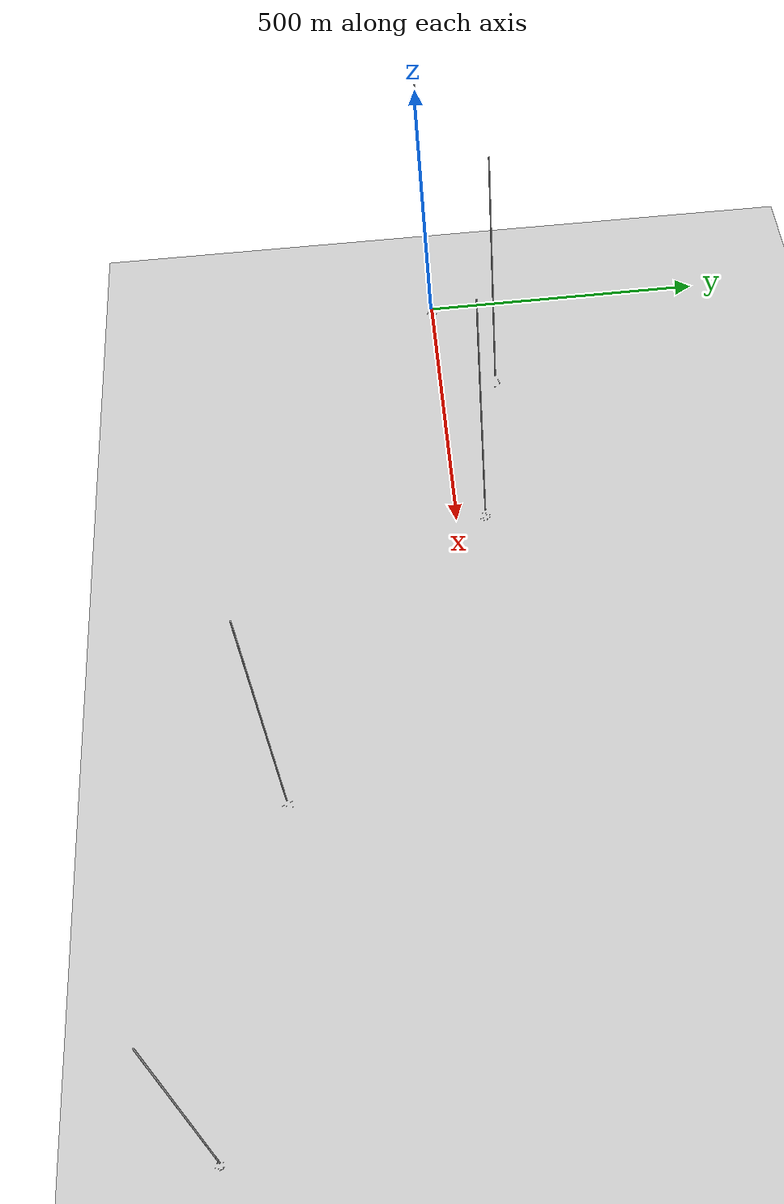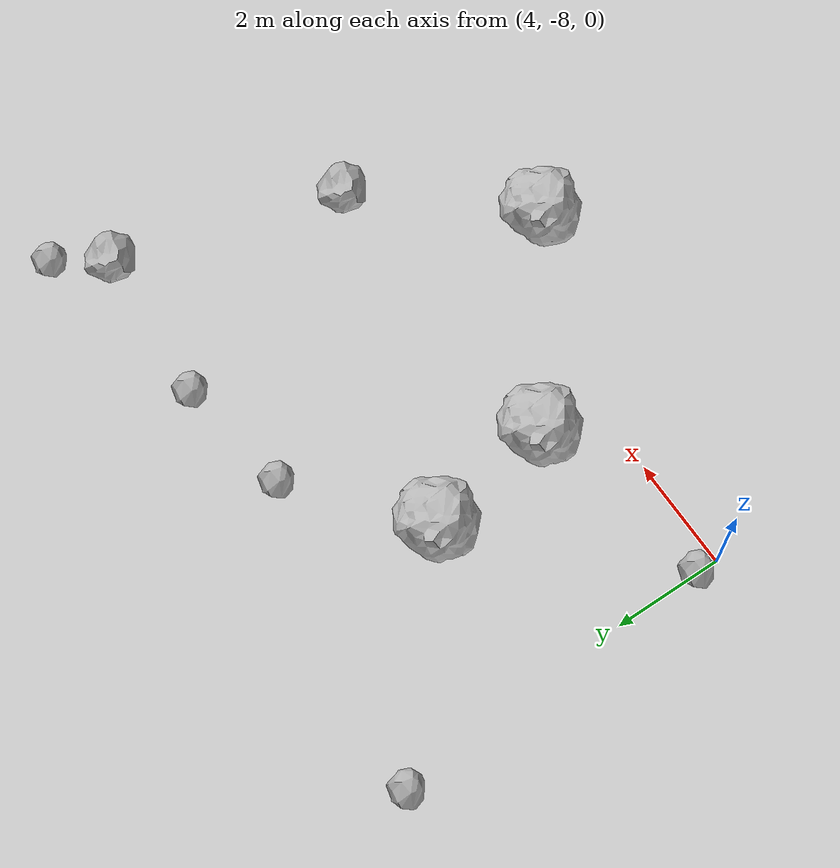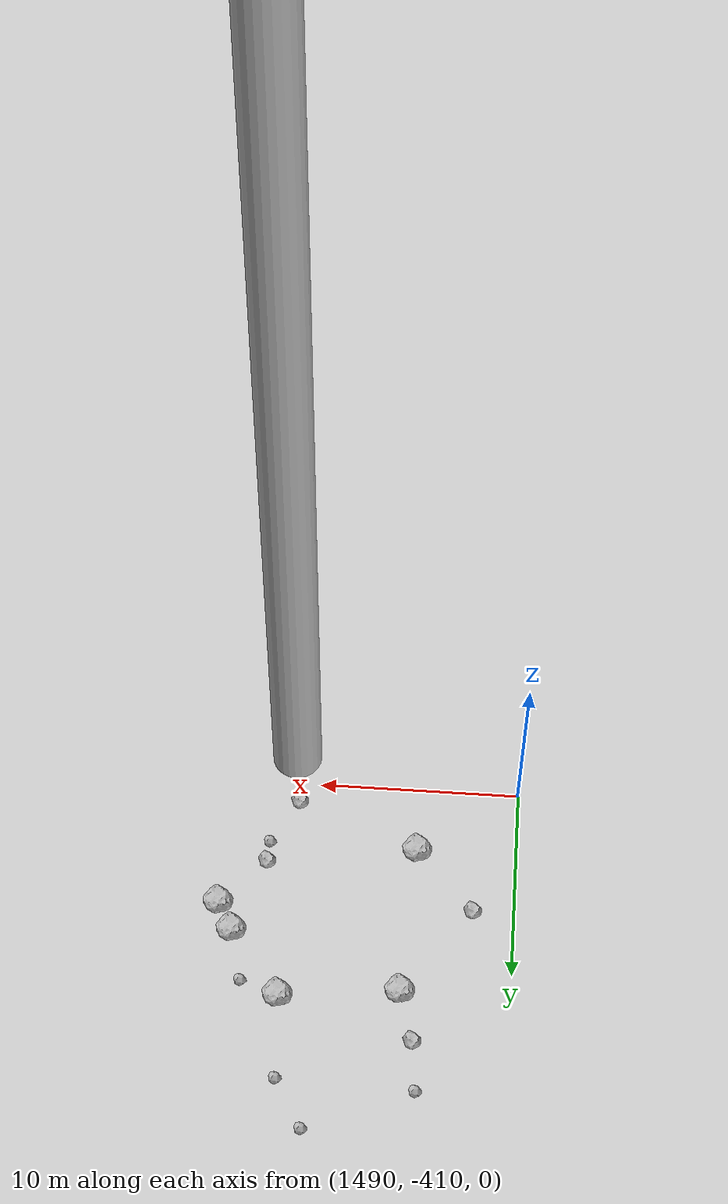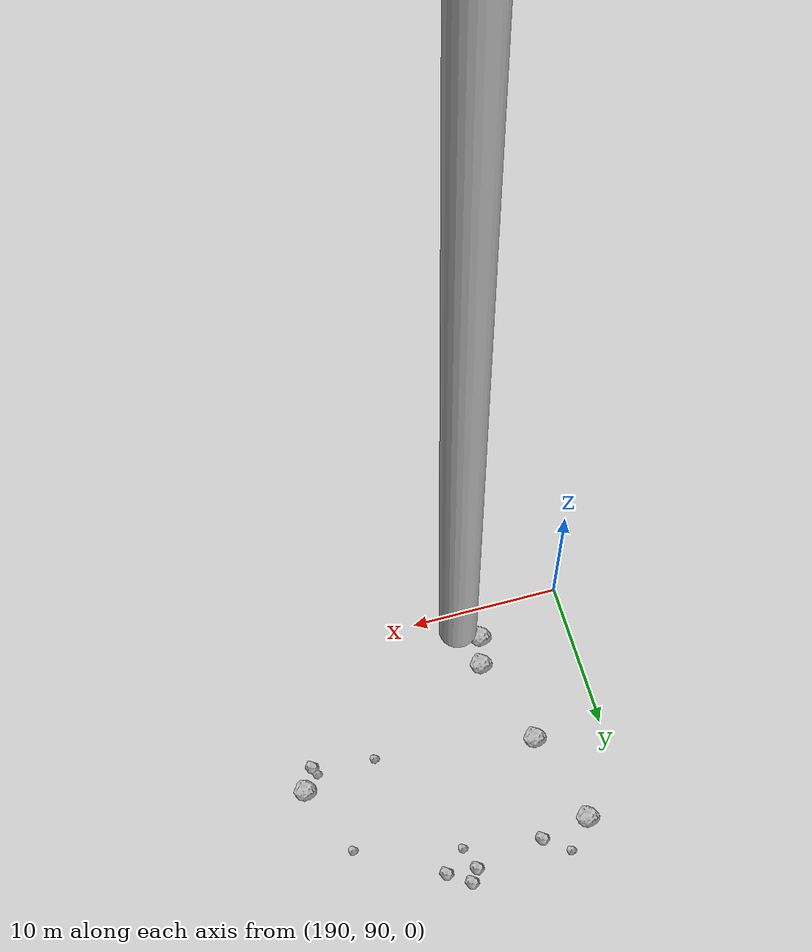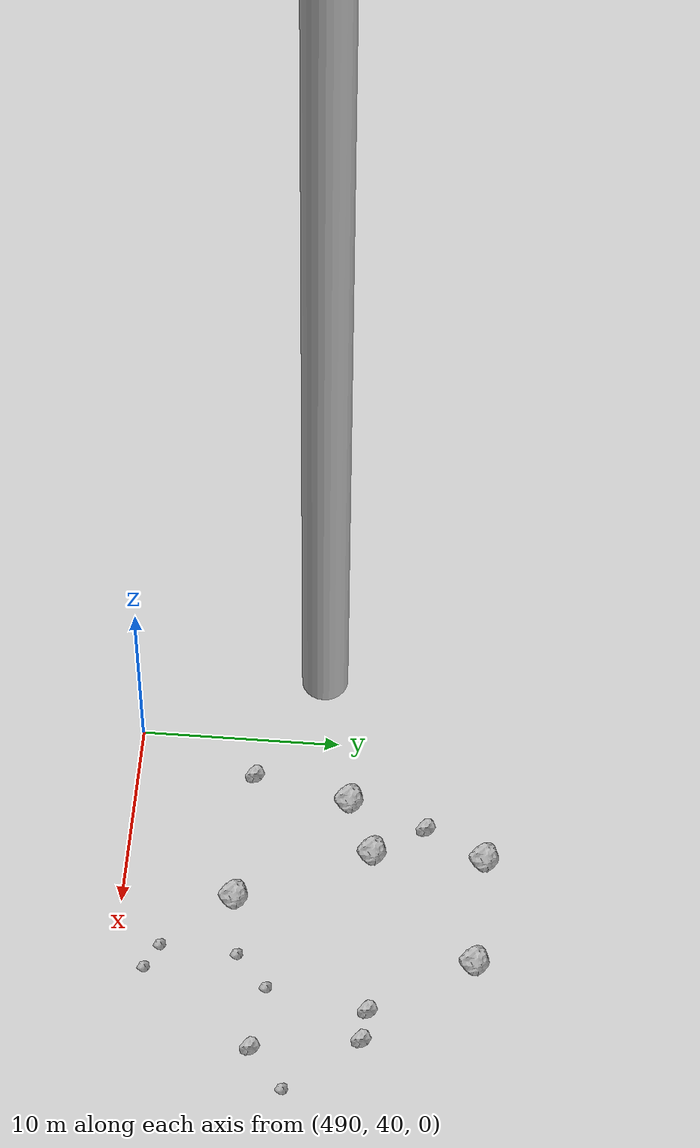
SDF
<?xml version="1.0" ?>
<sdf version="1.6">
  <world name="default">

    <include>
      <uri>model://custom_ground</uri>
    </include>

    <include>
      <uri>model://sun</uri>
    </include>

    <spherical_coordinates>
      <surface_model>EARTH_WGS84</surface_model>
      <latitude_deg>38.161479</latitude_deg>
      <longitude_deg>-122.454630</longitude_deg>
      <elevation>488.0</elevation>
      <heading_deg>90</heading_deg>
    </spherical_coordinates>

    <model name="rock1_0_0">
      <include>
        <uri>model://rock1</uri>
        <pose>14.348447405837915 7.849865509598889 0.5 0 0 0</pose>
      </include>
    </model>
    <model name="rock1_0_1">
      <include>
        <uri>model://rock1</uri>
        <pose>7.5090054143094225 -6.852094137410947 0.5 0 0 0</pose>
      </include>
    </model>
    <model name="rock1_0_2">
      <include>
        <uri>model://rock1</uri>
        <pose>16.06740990624697 6.977019175754908 0.5 0 0 0</pose>
      </include>
    </model>
    <model name="rock1_0_3">
      <include>
        <uri>model://rock1</uri>
        <pose>7.0879132378726295 -4.4633922328109055 0.5 0 0 0</pose>
      </include>
    </model>
    <model name="rock1_0_4">
      <include>
        <uri>model://rock1</uri>
        <pose>10.883055851693 -9.280295144150879 0.5 0 0 0</pose>
      </include>
    </model>
    <model name="rock2_0_0">
      <include>
        <uri>model://rock2</uri>
        <pose>12.92504175903105 9.139029672594098 0.3 0 0 0</pose>
      </include>
    </model>
    <model name="rock2_0_1">
      <include>
        <uri>model://rock2</uri>
        <pose>10.924583799178379 9.249332175939685 0.3 0 0 0</pose>
      </include>
    </model>
    <model name="rock2_0_2">
      <include>
        <uri>model://rock2</uri>
        <pose>7.784531748932815 9.494457128083816 0.3 0 0 0</pose>
      </include>
    </model>
    <model name="rock2_0_3">
      <include>
        <uri>model://rock2</uri>
        <pose>14.293036813907866 -2.5337610382145437 0.3 0 0 0</pose>
      </include>
    </model>
    <model name="rock2_0_4">
      <include>
        <uri>model://rock2</uri>
        <pose>13.19098873203519 -6.651909325874435 0.3 0 0 0</pose>
      </include>
    </model>
    <model name="rock3_0_0">
      <include>
        <uri>model://rock3</uri>
        <pose>11.397664664522138 -2.405096704230292 0.2 0 0 0</pose>
      </include>
    </model>
    <model name="rock3_0_1">
      <include>
        <uri>model://rock3</uri>
        <pose>3.6690367432815307 -1.611329021772022 0.2 0 0 0</pose>
      </include>
    </model>
    <model name="rock3_0_2">
      <include>
        <uri>model://rock3</uri>
        <pose>9.189882822254296 -2.734594351252282 0.2 0 0 0</pose>
      </include>
    </model>
    <model name="rock3_0_3">
      <include>
        <uri>model://rock3</uri>
        <pose>4.024147061640793 -7.610771966155236 0.2 0 0 0</pose>
      </include>
    </model>
    <model name="rock3_0_4">
      <include>
        <uri>model://rock3</uri>
        <pose>14.874675048642143 -1.6700242753592214 0.2 0 0 0</pose>
      </include>
    </model>
    <model name="rock1_1_0">
      <include>
        <uri>model://rock1</uri>
        <pose>196.46296826160096 94.13793164023555 0.5 0 0 0</pose>
      </include>
    </model>
    <model name="rock1_1_1">
      <include>
        <uri>model://rock1</uri>
        <pose>195.95654148999918 92.19966395376653 0.5 0 0 0</pose>
      </include>
    </model>
    <model name="rock1_1_2">
      <include>
        <uri>model://rock1</uri>
        <pose>209.8091913603389 99.6390987893886 0.5 0 0 0</pose>
      </include>
    </model>
    <model name="rock1_1_3">
      <include>
        <uri>model://rock1</uri>
        <pose>192.89166847514593 106.12647723957596 0.5 0 0 0</pose>
      </include>
    </model>
    <model name="rock1_1_4">
      <include>
        <uri>model://rock1</uri>
        <pose>194.55407755056504 100.09893443738244 0.5 0 0 0</pose>
      </include>
    </model>
    <model name="rock2_1_0">
      <include>
        <uri>model://rock2</uri>
        <pose>200.57566816071702 107.40548383668677 0.3 0 0 0</pose>
      </include>
    </model>
    <model name="rock2_1_1">
      <include>
        <uri>model://rock2</uri>
        <pose>201.11947010264745 108.2072452514717 0.3 0 0 0</pose>
      </include>
    </model>
    <model name="rock2_1_2">
      <include>
        <uri>model://rock2</uri>
        <pose>196.05046293583908 106.67072290524841 0.3 0 0 0</pose>
      </include>
    </model>
    <model name="rock2_1_3">
      <include>
        <uri>model://rock2</uri>
        <pose>202.5106423385767 107.24115187632974 0.3 0 0 0</pose>
      </include>
    </model>
    <model name="rock2_1_4">
      <include>
        <uri>model://rock2</uri>
        <pose>209.01776709465878 98.14314472796374 0.3 0 0 0</pose>
      </include>
    </model>
    <model name="rock3_1_0">
      <include>
        <uri>model://rock3</uri>
        <pose>204.93966211322328 98.59146276316775 0.2 0 0 0</pose>
      </include>
    </model>
    <model name="rock3_1_1">
      <include>
        <uri>model://rock3</uri>
        <pose>201.050672883871 105.88783761644919 0.2 0 0 0</pose>
      </include>
    </model>
    <model name="rock3_1_2">
      <include>
        <uri>model://rock3</uri>
        <pose>207.7780349959902 104.17593632297628 0.2 0 0 0</pose>
      </include>
    </model>
    <model name="rock3_1_3">
      <include>
        <uri>model://rock3</uri>
        <pose>194.46185994214235 107.84218928727472 0.2 0 0 0</pose>
      </include>
    </model>
    <model name="rock3_1_4">
      <include>
        <uri>model://rock3</uri>
        <pose>208.76460932890072 98.62818409208494 0.2 0 0 0</pose>
      </include>
    </model>
    <model name="rock1_2_0">
      <include>
        <uri>model://rock1</uri>
        <pose>496.48099408458825 57.67783220654281 0.5 0 0 0</pose>
      </include>
    </model>
    <model name="rock1_2_1">
      <include>
        <uri>model://rock1</uri>
        <pose>496.5244392780445 52.104532036722304 0.5 0 0 0</pose>
      </include>
    </model>
    <model name="rock1_2_2">
      <include>
        <uri>model://rock1</uri>
        <pose>502.3821834684601 57.49487580502042 0.5 0 0 0</pose>
      </include>
    </model>
    <model name="rock1_2_3">
      <include>
        <uri>model://rock1</uri>
        <pose>493.5580931437853 50.74654937642018 0.5 0 0 0</pose>
      </include>
    </model>
    <model name="rock1_2_4">
      <include>
        <uri>model://rock1</uri>
        <pose>499.58371280081116 45.486374948913394 0.5 0 0 0</pose>
      </include>
    </model>
    <model name="rock2_2_0">
      <include>
        <uri>model://rock2</uri>
        <pose>492.2928263415731 45.92371131701564 0.3 0 0 0</pose>
      </include>
    </model>
    <model name="rock2_2_1">
      <include>
        <uri>model://rock2</uri>
        <pose>505.29756190336354 52.51957873382337 0.3 0 0 0</pose>
      </include>
    </model>
    <model name="rock2_2_2">
      <include>
        <uri>model://rock2</uri>
        <pose>507.7272209501033 47.053662185033026 0.3 0 0 0</pose>
      </include>
    </model>
    <model name="rock2_2_3">
      <include>
        <uri>model://rock2</uri>
        <pose>506.90608532948977 52.328597964902386 0.3 0 0 0</pose>
      </include>
    </model>
    <model name="rock2_2_4">
      <include>
        <uri>model://rock2</uri>
        <pose>494.79920702576896 54.707668153044786 0.3 0 0 0</pose>
      </include>
    </model>
    <model name="rock3_2_0">
      <include>
        <uri>model://rock3</uri>
        <pose>502.41584890451867 42.14362100178166 0.2 0 0 0</pose>
      </include>
    </model>
    <model name="rock3_2_1">
      <include>
        <uri>model://rock3</uri>
        <pose>509.79067261557924 48.7314655499906 0.2 0 0 0</pose>
      </include>
    </model>
    <model name="rock3_2_2">
      <include>
        <uri>model://rock3</uri>
        <pose>502.666685459276 45.93564868091643 0.2 0 0 0</pose>
      </include>
    </model>
    <model name="rock3_2_3">
      <include>
        <uri>model://rock3</uri>
        <pose>503.71503251562496 41.48316492347806 0.2 0 0 0</pose>
      </include>
    </model>
    <model name="rock3_2_4">
      <include>
        <uri>model://rock3</uri>
        <pose>504.3943165254991 47.507770923146175 0.2 0 0 0</pose>
      </include>
    </model>
    <model name="rock1_3_0">
      <include>
        <uri>model://rock1</uri>
        <pose>999.2746142525765 -303.26576556844697 0.5 0 0 0</pose>
      </include>
    </model>
    <model name="rock1_3_1">
      <include>
        <uri>model://rock1</uri>
        <pose>992.2975107301925 -294.26088604819233 0.5 0 0 0</pose>
      </include>
    </model>
    <model name="rock1_3_2">
      <include>
        <uri>model://rock1</uri>
        <pose>998.3146400514677 -308.84619963644167 0.5 0 0 0</pose>
      </include>
    </model>
    <model name="rock1_3_3">
      <include>
        <uri>model://rock1</uri>
        <pose>993.3273645487891 -296.2359030890317 0.5 0 0 0</pose>
      </include>
    </model>
    <model name="rock1_3_4">
      <include>
        <uri>model://rock1</uri>
        <pose>999.004607077751 -309.0489843011772 0.5 0 0 0</pose>
      </include>
    </model>
    <model name="rock2_3_0">
      <include>
        <uri>model://rock2</uri>
        <pose>1004.955603261945 -296.072494464813 0.3 0 0 0</pose>
      </include>
    </model>
    <model name="rock2_3_1">
      <include>
        <uri>model://rock2</uri>
        <pose>997.3635024443382 -306.58179194373093 0.3 0 0 0</pose>
      </include>
    </model>
    <model name="rock2_3_2">
      <include>
        <uri>model://rock2</uri>
        <pose>1008.6578900945647 -304.88460381973965 0.3 0 0 0</pose>
      </include>
    </model>
    <model name="rock2_3_3">
      <include>
        <uri>model://rock2</uri>
        <pose>1001.6266991387105 -293.42248676221476 0.3 0 0 0</pose>
      </include>
    </model>
    <model name="rock2_3_4">
      <include>
        <uri>model://rock2</uri>
        <pose>996.3705425848107 -303.54717453838487 0.3 0 0 0</pose>
      </include>
    </model>
    <model name="rock3_3_0">
      <include>
        <uri>model://rock3</uri>
        <pose>993.7987131612919 -304.7409757063663 0.2 0 0 0</pose>
      </include>
    </model>
    <model name="rock3_3_1">
      <include>
        <uri>model://rock3</uri>
        <pose>998.8463563328056 -308.59762323752915 0.2 0 0 0</pose>
      </include>
    </model>
    <model name="rock3_3_2">
      <include>
        <uri>model://rock3</uri>
        <pose>1002.236072621697 -294.72020837029737 0.2 0 0 0</pose>
      </include>
    </model>
    <model name="rock3_3_3">
      <include>
        <uri>model://rock3</uri>
        <pose>994.9564847399921 -296.16864062150955 0.2 0 0 0</pose>
      </include>
    </model>
    <model name="rock3_3_4">
      <include>
        <uri>model://rock3</uri>
        <pose>1002.4093409888299 -305.7802837378887 0.2 0 0 0</pose>
      </include>
    </model>
    <model name="rock1_4_0">
      <include>
        <uri>model://rock1</uri>
        <pose>1494.958191684567 -406.4360854380067 0.5 0 0 0</pose>
      </include>
    </model>
    <model name="rock1_4_1">
      <include>
        <uri>model://rock1</uri>
        <pose>1504.603890073402 -402.9224511282003 0.5 0 0 0</pose>
      </include>
    </model>
    <model name="rock1_4_2">
      <include>
        <uri>model://rock1</uri>
        <pose>1503.8300092914365 -401.4780333293676 0.5 0 0 0</pose>
      </include>
    </model>
    <model name="rock1_4_3">
      <include>
        <uri>model://rock1</uri>
        <pose>1495.39862406117 -398.7296158709353 0.5 0 0 0</pose>
      </include>
    </model>
    <model name="rock1_4_4">
      <include>
        <uri>model://rock1</uri>
        <pose>1501.2809425750504 -398.1495803886489 0.5 0 0 0</pose>
      </include>
    </model>
    <model name="rock2_4_0">
      <include>
        <uri>model://rock2</uri>
        <pose>1492.0451865302805 -403.29387599457016 0.3 0 0 0</pose>
      </include>
    </model>
    <model name="rock2_4_1">
      <include>
        <uri>model://rock2</uri>
        <pose>1501.018435279126 -408.91269275533597 0.3 0 0 0</pose>
      </include>
    </model>
    <model name="rock2_4_2">
      <include>
        <uri>model://rock2</uri>
        <pose>1494.66457466509 -396.2199245033769 0.3 0 0 0</pose>
      </include>
    </model>
    <model name="rock2_4_3">
      <include>
        <uri>model://rock2</uri>
        <pose>1502.3970788800473 -405.42838134307203 0.3 0 0 0</pose>
      </include>
    </model>
    <model name="rock2_4_4">
      <include>
        <uri>model://rock2</uri>
        <pose>1495.3274990648354 -398.98278855415975 0.3 0 0 0</pose>
      </include>
    </model>
    <model name="rock3_4_0">
      <include>
        <uri>model://rock3</uri>
        <pose>1501.0145422978746 -393.9555427754316 0.2 0 0 0</pose>
      </include>
    </model>
    <model name="rock3_4_1">
      <include>
        <uri>model://rock3</uri>
        <pose>1499.6112297594195 -391.5165824034495 0.2 0 0 0</pose>
      </include>
    </model>
    <model name="rock3_4_2">
      <include>
        <uri>model://rock3</uri>
        <pose>1503.1346142722643 -398.89858981855446 0.2 0 0 0</pose>
      </include>
    </model>
    <model name="rock3_4_3">
      <include>
        <uri>model://rock3</uri>
        <pose>1502.3122417459283 -406.5615168542925 0.2 0 0 0</pose>
      </include>
    </model>
    <model name="rock3_4_4">
      <include>
        <uri>model://rock3</uri>
        <pose>1494.3591733318867 -393.7105899450559 0.2 0 0 0</pose>
      </include>
    </model>

    <model name="cylinder_1">
      <static>true</static>
      <link name="link">
        <visual name="visual">
          <geometry>
            <cylinder>
              <radius>1</radius>
              <length>500</length>
            </cylinder>
          </geometry>
        </visual>
      </link>
      <pose>10 0 270 0 0 0</pose>
    </model>

    <model name="cylinder_2">
      <static>true</static>
      <link name="link">
        <visual name="visual">
          <geometry>
            <cylinder>
              <radius>1</radius>
              <length>500</length>
            </cylinder>
          </geometry>
        </visual>
      </link>
      <pose>200 100 270 0 0 0</pose>
    </model>

    <model name="cylinder_3">
      <static>true</static>
      <link name="link">
        <visual name="visual">
          <geometry>
            <cylinder>
              <radius>1</radius>
              <length>500</length>
            </cylinder>
          </geometry>
        </visual>
      </link>
      <pose>500 50 270 0 0 0</pose>
    </model>

    <model name="cylinder_4">
      <static>true</static>
      <link name="link">
        <visual name="visual">
          <geometry>
            <cylinder>
              <radius>1</radius>
              <length>500</length>
            </cylinder>
          </geometry>
        </visual>
      </link>
      <pose>1000 -300 270 0 0 0</pose>
    </model>

    <model name="cylinder_5">
      <static>true</static>
      <link name="link">
        <visual name="visual">
          <geometry>
            <cylinder>
              <radius>1</radius>
              <length>500</length>
            </cylinder>
          </geometry>
        </visual>
      </link>
      <pose>1500 -400 270 0 0 0</pose>
    </model>

  </world>
</sdf>

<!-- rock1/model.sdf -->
<sdf version="1.6">
  <model name="rock1">
    <static>true</static> <!-- Set to true if the model should not move -->
    <pose>0 0 0 0 0 0</pose>

    <!--z offset is 0.5 for full scale-->

    <link name="link">
      <collision name="rock1_collision">
        <geometry>
          <mesh>
            <uri>model://meshes/rock1.dae</uri>
          </mesh>
        </geometry>
      </collision>
      <visual name="rock1_visual">
        <geometry>
          <mesh>
            <uri>model://meshes/rock1.dae</uri>
          </mesh>
        </geometry>
        <material>
          <script>
            <uri>model://materials/scripts/sand_pebbles.material</uri>
            <name>custom_ground/Image</name>
          </script>
        </material>
      </visual>
    </link>
  </model>
</sdf>

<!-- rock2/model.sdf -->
<sdf version="1.6">
  <model name="rock2">
    <static>true</static> <!-- Set to true if the model should not move -->
    <pose>0 0 0 0 0 0</pose>

    <!--z offset is 0.3 for full scale-->

    <link name="link">
      <collision name="rock2_collision">
        <geometry>
          <mesh>
            <uri>model://meshes/rock2.dae</uri>
          </mesh>
        </geometry>
      </collision>
      <visual name="rock2_visual">
        <geometry>
          <mesh>
            <uri>model://meshes/rock2.dae</uri>
          </mesh>
        </geometry>
        <material>
          <script>
            <uri>model://materials/scripts/sand_pebbles.material</uri>
            <name>custom_ground/Image</name>
          </script>
        </material>
      </visual>
    </link>
  </model>
</sdf>

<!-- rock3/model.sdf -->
<sdf version="1.6">
  <model name="rock3">
    <static>true</static> <!-- Set to true if the model should not move -->
    <pose>0 0 0 0 0 0</pose>

    <!--z offset is 0.2 for full scale-->

    <link name="link">
      <collision name="rock3_collision">
        <geometry>
          <mesh>
            <uri>model://meshes/rock3.dae</uri>
          </mesh>
        </geometry>
      </collision>
      <visual name="rock3_visual">
        <geometry>
          <mesh>
            <uri>model://meshes/rock3.dae</uri>
          </mesh>
        </geometry>
        <material>
          <script>
            <uri>model://materials/scripts/sand_pebbles.material</uri>
            <name>custom_ground/Image</name>
          </script>
        </material>
      </visual>
    </link>
  </model>
</sdf>

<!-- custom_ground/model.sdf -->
<sdf version="1.6">
  <model name="custom_ground">
    <static>true</static> <!-- Ground is static and immovable -->
    <link name="ground_link">
      <pose>240 0 0 0 0 0</pose> <!-- Position and orientation relative to the world -->
      <!-- Visual Representation -->
      <visual name="ground_visual">
        <geometry>
          <plane>
            <normal>0 0 1</normal> <!-- Upward facing plane -->
            <size>500 500</size> <!-- Size of the plane -->
          </plane>
        </geometry>
        <material>
          <script>
            <uri>model://materials/scripts/sand_pebbles.material</uri>
            <name>custom_ground/Image</name>
          </script>
        </material>
      </visual>

      <!-- Collision Representation -->
      <collision name="ground_collision">
        <geometry>
          <plane>
            <normal>0 0 1</normal>
            <size>100 100</size>
          </plane>
        </geometry>
      </collision>

    </link>
  </model>
</sdf>
